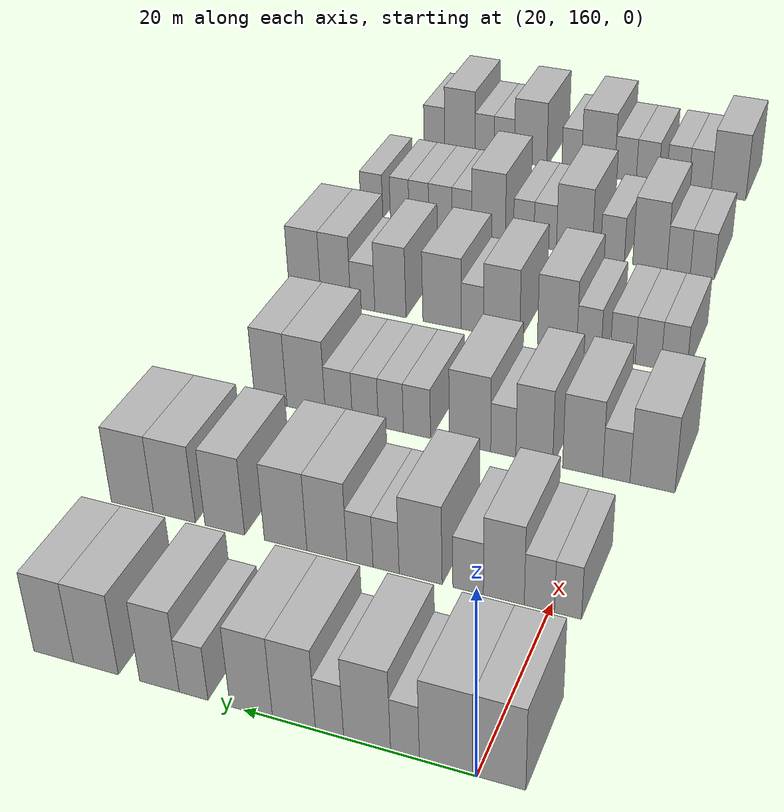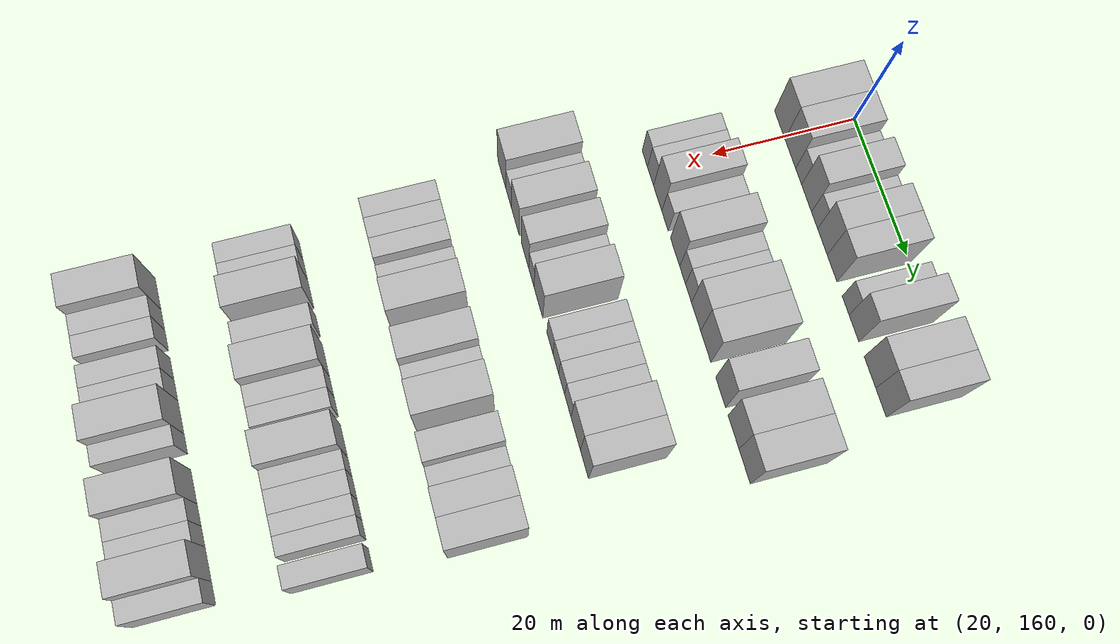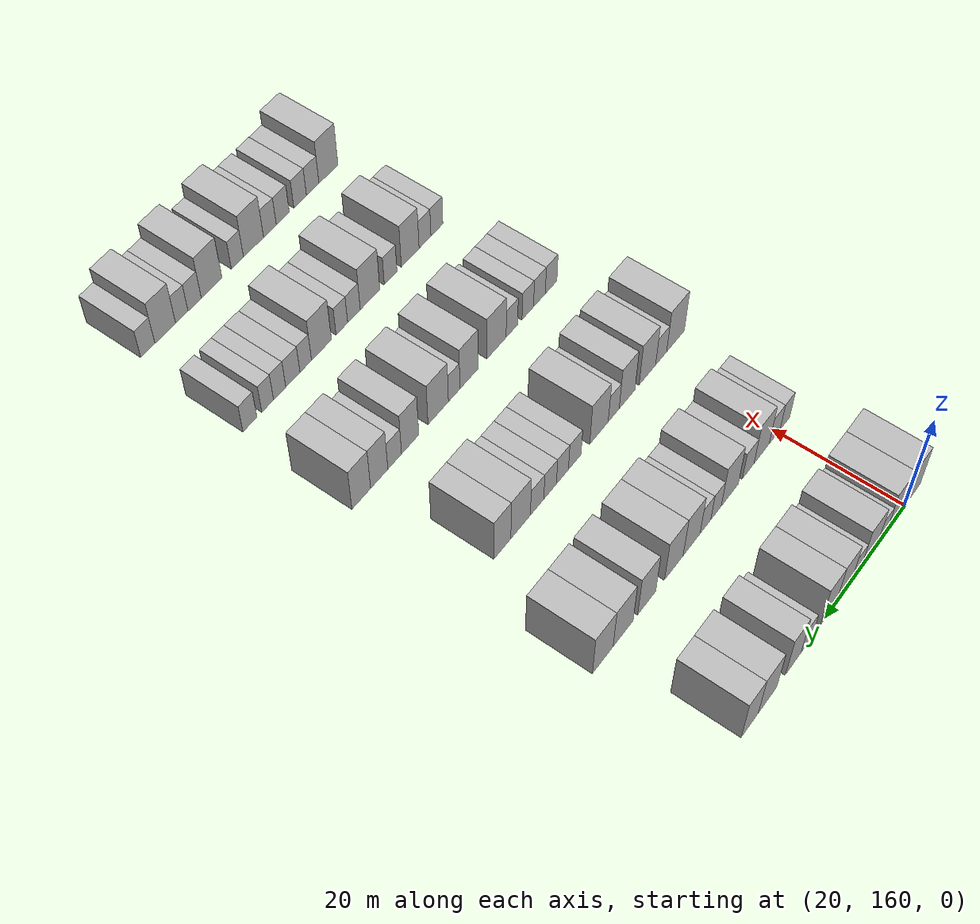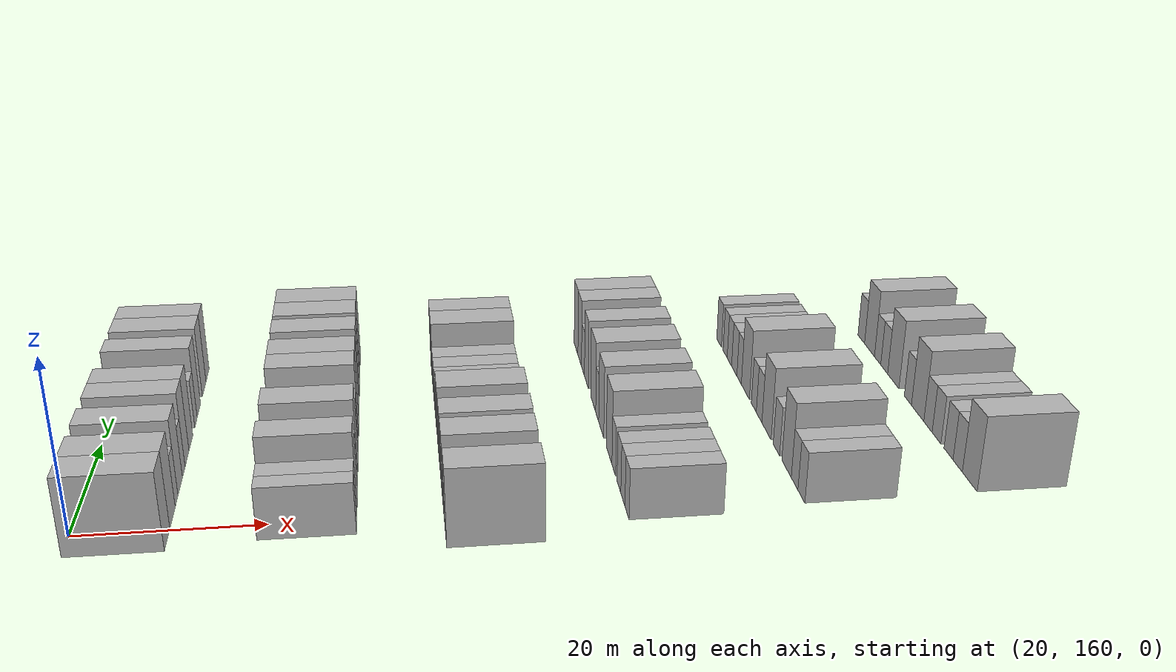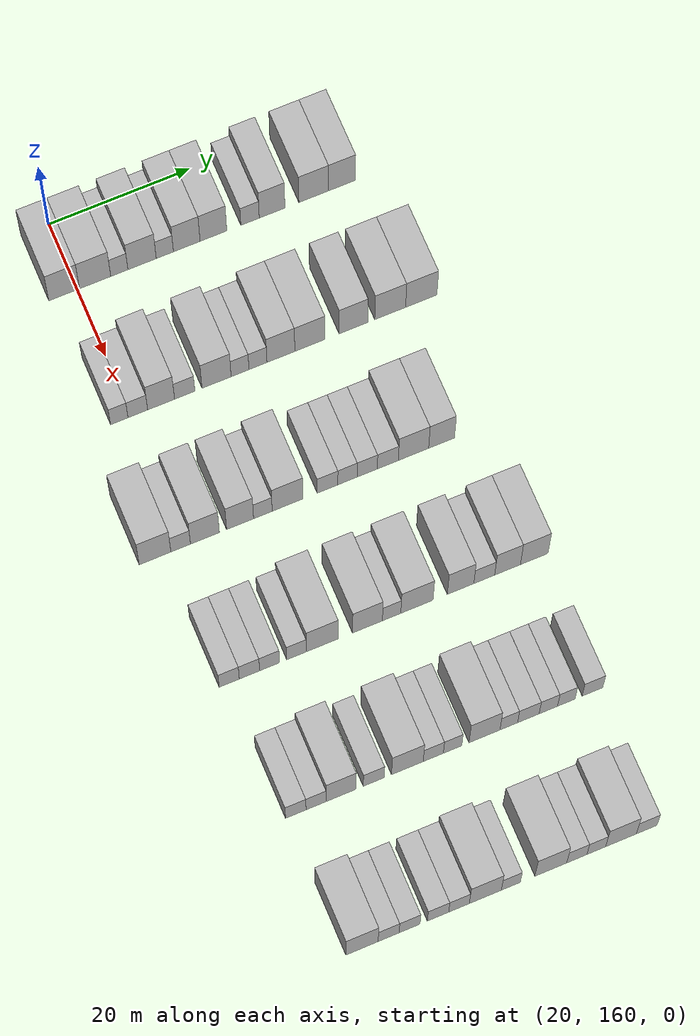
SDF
<sdf version="1.6">
 <world name="default">
  <model name="building_129">
   <static>1</static>
   <pose>25.0000 158.1504 0 0.000000 0.000000 0.000000</pose>
   <link name="link">
    <pose>0 0 4.50 0 0 0</pose>
    <collision name="collision"><geometry><box><size>10.0000 4.3362 9.0000</size></box></geometry></collision>
    <visual name="visual">
     <cast_shadows>0</cast_shadows>
     <geometry><box><size>10.0000 4.3362 9.0000</size></box></geometry>
     <material>
      <script>
       <uri>model://HANNAS_wall/materials/scripts</uri>
       <uri>model://HANNAS_wall/materials/textures</uri>
       <name>vrc/HANNAS_wall</name>
      </script>
     </material>
    </visual>
   </link>
  </model>
  <model name="building_130">
   <static>1</static>
   <pose>25.0000 162.5303 0 0.000000 0.000000 0.000000</pose>
   <link name="link">
    <pose>0 0 4.50 0 0 0</pose>
    <collision name="collision"><geometry><box><size>10.0000 4.4236 9.0000</size></box></geometry></collision>
    <visual name="visual">
     <cast_shadows>0</cast_shadows>
     <geometry><box><size>10.0000 4.4236 9.0000</size></box></geometry>
     <material>
      <script>
       <uri>model://HANNAS_wall/materials/scripts</uri>
       <uri>model://HANNAS_wall/materials/textures</uri>
       <name>vrc/HANNAS_wall</name>
      </script>
     </material>
    </visual>
   </link>
  </model>
  <model name="building_131">
   <static>1</static>
   <pose>25.0000 165.9577 0 0.000000 0.000000 0.000000</pose>
   <link name="link">
    <pose>0 0 3.00 0 0 0</pose>
    <collision name="collision"><geometry><box><size>10.0000 2.4312 6.0000</size></box></geometry></collision>
    <visual name="visual">
     <cast_shadows>0</cast_shadows>
     <geometry><box><size>10.0000 2.4312 6.0000</size></box></geometry>
     <material>
      <script>
       <uri>model://HANNAS_wall/materials/scripts</uri>
       <uri>model://HANNAS_wall/materials/textures</uri>
       <name>vrc/HANNAS_wall</name>
      </script>
     </material>
    </visual>
   </link>
  </model>
  <model name="building_132">
   <static>1</static>
   <pose>25.0000 169.1819 0 0.000000 0.000000 0.000000</pose>
   <link name="link">
    <pose>0 0 4.50 0 0 0</pose>
    <collision name="collision"><geometry><box><size>10.0000 4.0173 9.0000</size></box></geometry></collision>
    <visual name="visual">
     <cast_shadows>0</cast_shadows>
     <geometry><box><size>10.0000 4.0173 9.0000</size></box></geometry>
     <material>
      <script>
       <uri>model://HANNAS_wall/materials/scripts</uri>
       <uri>model://HANNAS_wall/materials/textures</uri>
       <name>vrc/HANNAS_wall</name>
      </script>
     </material>
    </visual>
   </link>
  </model>
  <model name="building_133">
   <static>1</static>
   <pose>25.0000 172.4122 0 0.000000 0.000000 0.000000</pose>
   <link name="link">
    <pose>0 0 3.00 0 0 0</pose>
    <collision name="collision"><geometry><box><size>10.0000 2.4432 6.0000</size></box></geometry></collision>
    <visual name="visual">
     <cast_shadows>0</cast_shadows>
     <geometry><box><size>10.0000 2.4432 6.0000</size></box></geometry>
     <material>
      <script>
       <uri>model://HANNAS_wall/materials/scripts</uri>
       <uri>model://HANNAS_wall/materials/textures</uri>
       <name>vrc/HANNAS_wall</name>
      </script>
     </material>
    </visual>
   </link>
  </model>
  <model name="building_134">
   <static>1</static>
   <pose>25.0000 175.5269 0 0.000000 0.000000 0.000000</pose>
   <link name="link">
    <pose>0 0 4.50 0 0 0</pose>
    <collision name="collision"><geometry><box><size>10.0000 3.7863 9.0000</size></box></geometry></collision>
    <visual name="visual">
     <cast_shadows>0</cast_shadows>
     <geometry><box><size>10.0000 3.7863 9.0000</size></box></geometry>
     <material>
      <script>
       <uri>model://HANNAS_wall/materials/scripts</uri>
       <uri>model://HANNAS_wall/materials/textures</uri>
       <name>vrc/HANNAS_wall</name>
      </script>
     </material>
    </visual>
   </link>
  </model>
  <model name="building_135">
   <static>1</static>
   <pose>25.0000 179.3238 0 0.000000 0.000000 0.000000</pose>
   <link name="link">
    <pose>0 0 4.50 0 0 0</pose>
    <collision name="collision"><geometry><box><size>10.0000 3.8074 9.0000</size></box></geometry></collision>
    <visual name="visual">
     <cast_shadows>0</cast_shadows>
     <geometry><box><size>10.0000 3.8074 9.0000</size></box></geometry>
     <material>
      <script>
       <uri>model://HANNAS_wall/materials/scripts</uri>
       <uri>model://HANNAS_wall/materials/textures</uri>
       <name>vrc/HANNAS_wall</name>
      </script>
     </material>
    </visual>
   </link>
  </model>
  <model name="building_136">
   <static>1</static>
   <pose>25.0000 184.5432 0 0.000000 0.000000 0.000000</pose>
   <link name="link">
    <pose>0 0 3.00 0 0 0</pose>
    <collision name="collision"><geometry><box><size>10.0000 2.6314 6.0000</size></box></geometry></collision>
    <visual name="visual">
     <cast_shadows>0</cast_shadows>
     <geometry><box><size>10.0000 2.6314 6.0000</size></box></geometry>
     <material>
      <script>
       <uri>model://HANNAS_wall/materials/scripts</uri>
       <uri>model://HANNAS_wall/materials/textures</uri>
       <name>vrc/HANNAS_wall</name>
      </script>
     </material>
    </visual>
   </link>
  </model>
  <model name="building_137">
   <static>1</static>
   <pose>25.0000 187.6938 0 0.000000 0.000000 0.000000</pose>
   <link name="link">
    <pose>0 0 4.50 0 0 0</pose>
    <collision name="collision"><geometry><box><size>10.0000 3.6699 9.0000</size></box></geometry></collision>
    <visual name="visual">
     <cast_shadows>0</cast_shadows>
     <geometry><box><size>10.0000 3.6699 9.0000</size></box></geometry>
     <material>
      <script>
       <uri>model://HANNAS_wall/materials/scripts</uri>
       <uri>model://HANNAS_wall/materials/textures</uri>
       <name>vrc/HANNAS_wall</name>
      </script>
     </material>
    </visual>
   </link>
  </model>
  <model name="building_138">
   <static>1</static>
   <pose>25.0000 193.6591 0 0.000000 0.000000 0.000000</pose>
   <link name="link">
    <pose>0 0 4.50 0 0 0</pose>
    <collision name="collision"><geometry><box><size>10.0000 4.2606 9.0000</size></box></geometry></collision>
    <visual name="visual">
     <cast_shadows>0</cast_shadows>
     <geometry><box><size>10.0000 4.2606 9.0000</size></box></geometry>
     <material>
      <script>
       <uri>model://HANNAS_wall/materials/scripts</uri>
       <uri>model://HANNAS_wall/materials/textures</uri>
       <name>vrc/HANNAS_wall</name>
      </script>
     </material>
    </visual>
   </link>
  </model>
  <model name="building_139">
   <static>1</static>
   <pose>25.0000 197.7045 0 0.000000 0.000000 0.000000</pose>
   <link name="link">
    <pose>0 0 4.50 0 0 0</pose>
    <collision name="collision"><geometry><box><size>10.0000 3.8302 9.0000</size></box></geometry></collision>
    <visual name="visual">
     <cast_shadows>0</cast_shadows>
     <geometry><box><size>10.0000 3.8302 9.0000</size></box></geometry>
     <material>
      <script>
       <uri>model://HANNAS_wall/materials/scripts</uri>
       <uri>model://HANNAS_wall/materials/textures</uri>
       <name>vrc/HANNAS_wall</name>
      </script>
     </material>
    </visual>
   </link>
  </model>
  <model name="building_295">
   <static>1</static>
   <pose>44.0000 158.2933 0 0.000000 0.000000 0.000000</pose>
   <link name="link">
    <pose>0 0 3.00 0 0 0</pose>
    <collision name="collision"><geometry><box><size>10.0000 2.4459 6.0000</size></box></geometry></collision>
    <visual name="visual">
     <cast_shadows>0</cast_shadows>
     <geometry><box><size>10.0000 2.4459 6.0000</size></box></geometry>
     <material>
      <script>
       <uri>model://HANNAS_wall/materials/scripts</uri>
       <uri>model://HANNAS_wall/materials/textures</uri>
       <name>vrc/HANNAS_wall</name>
      </script>
     </material>
    </visual>
   </link>
  </model>
  <model name="building_296">
   <static>1</static>
   <pose>44.0000 160.8919 0 0.000000 0.000000 0.000000</pose>
   <link name="link">
    <pose>0 0 3.00 0 0 0</pose>
    <collision name="collision"><geometry><box><size>10.0000 2.7513 6.0000</size></box></geometry></collision>
    <visual name="visual">
     <cast_shadows>0</cast_shadows>
     <geometry><box><size>10.0000 2.7513 6.0000</size></box></geometry>
     <material>
      <script>
       <uri>model://HANNAS_wall/materials/scripts</uri>
       <uri>model://HANNAS_wall/materials/textures</uri>
       <name>vrc/HANNAS_wall</name>
      </script>
     </material>
    </visual>
   </link>
  </model>
  <model name="building_297">
   <static>1</static>
   <pose>44.0000 164.1567 0 0.000000 0.000000 0.000000</pose>
   <link name="link">
    <pose>0 0 4.50 0 0 0</pose>
    <collision name="collision"><geometry><box><size>10.0000 3.7783 9.0000</size></box></geometry></collision>
    <visual name="visual">
     <cast_shadows>0</cast_shadows>
     <geometry><box><size>10.0000 3.7783 9.0000</size></box></geometry>
     <material>
      <script>
       <uri>model://HANNAS_wall/materials/scripts</uri>
       <uri>model://HANNAS_wall/materials/textures</uri>
       <name>vrc/HANNAS_wall</name>
      </script>
     </material>
    </visual>
   </link>
  </model>
  <model name="building_298">
   <static>1</static>
   <pose>44.0000 167.4748 0 0.000000 0.000000 0.000000</pose>
   <link name="link">
    <pose>0 0 3.00 0 0 0</pose>
    <collision name="collision"><geometry><box><size>10.0000 2.8578 6.0000</size></box></geometry></collision>
    <visual name="visual">
     <cast_shadows>0</cast_shadows>
     <geometry><box><size>10.0000 2.8578 6.0000</size></box></geometry>
     <material>
      <script>
       <uri>model://HANNAS_wall/materials/scripts</uri>
       <uri>model://HANNAS_wall/materials/textures</uri>
       <name>vrc/HANNAS_wall</name>
      </script>
     </material>
    </visual>
   </link>
  </model>
  <model name="building_299">
   <static>1</static>
   <pose>44.0000 171.9542 0 0.000000 0.000000 0.000000</pose>
   <link name="link">
    <pose>0 0 4.50 0 0 0</pose>
    <collision name="collision"><geometry><box><size>10.0000 4.1010 9.0000</size></box></geometry></collision>
    <visual name="visual">
     <cast_shadows>0</cast_shadows>
     <geometry><box><size>10.0000 4.1010 9.0000</size></box></geometry>
     <material>
      <script>
       <uri>model://HANNAS_wall/materials/scripts</uri>
       <uri>model://HANNAS_wall/materials/textures</uri>
       <name>vrc/HANNAS_wall</name>
      </script>
     </material>
    </visual>
   </link>
  </model>
  <model name="building_300">
   <static>1</static>
   <pose>44.0000 175.2637 0 0.000000 0.000000 0.000000</pose>
   <link name="link">
    <pose>0 0 3.00 0 0 0</pose>
    <collision name="collision"><geometry><box><size>10.0000 2.5179 6.0000</size></box></geometry></collision>
    <visual name="visual">
     <cast_shadows>0</cast_shadows>
     <geometry><box><size>10.0000 2.5179 6.0000</size></box></geometry>
     <material>
      <script>
       <uri>model://HANNAS_wall/materials/scripts</uri>
       <uri>model://HANNAS_wall/materials/textures</uri>
       <name>vrc/HANNAS_wall</name>
      </script>
     </material>
    </visual>
   </link>
  </model>
  <model name="building_301">
   <static>1</static>
   <pose>44.0000 177.7929 0 0.000000 0.000000 0.000000</pose>
   <link name="link">
    <pose>0 0 3.00 0 0 0</pose>
    <collision name="collision"><geometry><box><size>10.0000 2.5406 6.0000</size></box></geometry></collision>
    <visual name="visual">
     <cast_shadows>0</cast_shadows>
     <geometry><box><size>10.0000 2.5406 6.0000</size></box></geometry>
     <material>
      <script>
       <uri>model://HANNAS_wall/materials/scripts</uri>
       <uri>model://HANNAS_wall/materials/textures</uri>
       <name>vrc/HANNAS_wall</name>
      </script>
     </material>
    </visual>
   </link>
  </model>
  <model name="building_302">
   <static>1</static>
   <pose>44.0000 181.0361 0 0.000000 0.000000 0.000000</pose>
   <link name="link">
    <pose>0 0 4.50 0 0 0</pose>
    <collision name="collision"><geometry><box><size>10.0000 3.9457 9.0000</size></box></geometry></collision>
    <visual name="visual">
     <cast_shadows>0</cast_shadows>
     <geometry><box><size>10.0000 3.9457 9.0000</size></box></geometry>
     <material>
      <script>
       <uri>model://HANNAS_wall/materials/scripts</uri>
       <uri>model://HANNAS_wall/materials/textures</uri>
       <name>vrc/HANNAS_wall</name>
      </script>
     </material>
    </visual>
   </link>
  </model>
  <model name="building_303">
   <static>1</static>
   <pose>44.0000 185.1451 0 0.000000 0.000000 0.000000</pose>
   <link name="link">
    <pose>0 0 4.50 0 0 0</pose>
    <collision name="collision"><geometry><box><size>10.0000 4.2724 9.0000</size></box></geometry></collision>
    <visual name="visual">
     <cast_shadows>0</cast_shadows>
     <geometry><box><size>10.0000 4.2724 9.0000</size></box></geometry>
     <material>
      <script>
       <uri>model://HANNAS_wall/materials/scripts</uri>
       <uri>model://HANNAS_wall/materials/textures</uri>
       <name>vrc/HANNAS_wall</name>
      </script>
     </material>
    </visual>
   </link>
  </model>
  <model name="building_304">
   <static>1</static>
   <pose>44.0000 191.3143 0 0.000000 0.000000 0.000000</pose>
   <link name="link">
    <pose>0 0 4.50 0 0 0</pose>
    <collision name="collision"><geometry><box><size>10.0000 4.0660 9.0000</size></box></geometry></collision>
    <visual name="visual">
     <cast_shadows>0</cast_shadows>
     <geometry><box><size>10.0000 4.0660 9.0000</size></box></geometry>
     <material>
      <script>
       <uri>model://HANNAS_wall/materials/scripts</uri>
       <uri>model://HANNAS_wall/materials/textures</uri>
       <name>vrc/HANNAS_wall</name>
      </script>
     </material>
    </visual>
   </link>
  </model>
  <model name="building_305">
   <static>1</static>
   <pose>44.0000 196.5431 0 0.000000 0.000000 0.000000</pose>
   <link name="link">
    <pose>0 0 4.50 0 0 0</pose>
    <collision name="collision"><geometry><box><size>10.0000 4.3914 9.0000</size></box></geometry></collision>
    <visual name="visual">
     <cast_shadows>0</cast_shadows>
     <geometry><box><size>10.0000 4.3914 9.0000</size></box></geometry>
     <material>
      <script>
       <uri>model://HANNAS_wall/materials/scripts</uri>
       <uri>model://HANNAS_wall/materials/textures</uri>
       <name>vrc/HANNAS_wall</name>
      </script>
     </material>
    </visual>
   </link>
  </model>
  <model name="building_306">
   <static>1</static>
   <pose>44.0000 200.9729 0 0.000000 0.000000 0.000000</pose>
   <link name="link">
    <pose>0 0 4.50 0 0 0</pose>
    <collision name="collision"><geometry><box><size>10.0000 4.4682 9.0000</size></box></geometry></collision>
    <visual name="visual">
     <cast_shadows>0</cast_shadows>
     <geometry><box><size>10.0000 4.4682 9.0000</size></box></geometry>
     <material>
      <script>
       <uri>model://HANNAS_wall/materials/scripts</uri>
       <uri>model://HANNAS_wall/materials/textures</uri>
       <name>vrc/HANNAS_wall</name>
      </script>
     </material>
    </visual>
   </link>
  </model>
  <model name="building_475">
   <static>1</static>
   <pose>63.0000 155.5913 0 0.000000 0.000000 0.000000</pose>
   <link name="link">
    <pose>0 0 4.50 0 0 0</pose>
    <collision name="collision"><geometry><box><size>10.0000 4.4008 9.0000</size></box></geometry></collision>
    <visual name="visual">
     <cast_shadows>0</cast_shadows>
     <geometry><box><size>10.0000 4.4008 9.0000</size></box></geometry>
     <material>
      <script>
       <uri>model://HANNAS_wall/materials/scripts</uri>
       <uri>model://HANNAS_wall/materials/textures</uri>
       <name>vrc/HANNAS_wall</name>
      </script>
     </material>
    </visual>
   </link>
  </model>
  <model name="building_476">
   <static>1</static>
   <pose>63.0000 159.1516 0 0.000000 0.000000 0.000000</pose>
   <link name="link">
    <pose>0 0 3.00 0 0 0</pose>
    <collision name="collision"><geometry><box><size>10.0000 2.7197 6.0000</size></box></geometry></collision>
    <visual name="visual">
     <cast_shadows>0</cast_shadows>
     <geometry><box><size>10.0000 2.7197 6.0000</size></box></geometry>
     <material>
      <script>
       <uri>model://HANNAS_wall/materials/scripts</uri>
       <uri>model://HANNAS_wall/materials/textures</uri>
       <name>vrc/HANNAS_wall</name>
      </script>
     </material>
    </visual>
   </link>
  </model>
  <model name="building_477">
   <static>1</static>
   <pose>63.0000 162.5235 0 0.000000 0.000000 0.000000</pose>
   <link name="link">
    <pose>0 0 4.50 0 0 0</pose>
    <collision name="collision"><geometry><box><size>10.0000 4.0241 9.0000</size></box></geometry></collision>
    <visual name="visual">
     <cast_shadows>0</cast_shadows>
     <geometry><box><size>10.0000 4.0241 9.0000</size></box></geometry>
     <material>
      <script>
       <uri>model://HANNAS_wall/materials/scripts</uri>
       <uri>model://HANNAS_wall/materials/textures</uri>
       <name>vrc/HANNAS_wall</name>
      </script>
     </material>
    </visual>
   </link>
  </model>
  <model name="building_478">
   <static>1</static>
   <pose>63.0000 167.4184 0 0.000000 0.000000 0.000000</pose>
   <link name="link">
    <pose>0 0 4.50 0 0 0</pose>
    <collision name="collision"><geometry><box><size>10.0000 3.7657 9.0000</size></box></geometry></collision>
    <visual name="visual">
     <cast_shadows>0</cast_shadows>
     <geometry><box><size>10.0000 3.7657 9.0000</size></box></geometry>
     <material>
      <script>
       <uri>model://HANNAS_wall/materials/scripts</uri>
       <uri>model://HANNAS_wall/materials/textures</uri>
       <name>vrc/HANNAS_wall</name>
      </script>
     </material>
    </visual>
   </link>
  </model>
  <model name="building_479">
   <static>1</static>
   <pose>63.0000 170.5989 0 0.000000 0.000000 0.000000</pose>
   <link name="link">
    <pose>0 0 3.00 0 0 0</pose>
    <collision name="collision"><geometry><box><size>10.0000 2.5954 6.0000</size></box></geometry></collision>
    <visual name="visual">
     <cast_shadows>0</cast_shadows>
     <geometry><box><size>10.0000 2.5954 6.0000</size></box></geometry>
     <material>
      <script>
       <uri>model://HANNAS_wall/materials/scripts</uri>
       <uri>model://HANNAS_wall/materials/textures</uri>
       <name>vrc/HANNAS_wall</name>
      </script>
     </material>
    </visual>
   </link>
  </model>
  <model name="building_480">
   <static>1</static>
   <pose>63.0000 174.0496 0 0.000000 0.000000 0.000000</pose>
   <link name="link">
    <pose>0 0 4.50 0 0 0</pose>
    <collision name="collision"><geometry><box><size>10.0000 4.3059 9.0000</size></box></geometry></collision>
    <visual name="visual">
     <cast_shadows>0</cast_shadows>
     <geometry><box><size>10.0000 4.3059 9.0000</size></box></geometry>
     <material>
      <script>
       <uri>model://HANNAS_wall/materials/scripts</uri>
       <uri>model://HANNAS_wall/materials/textures</uri>
       <name>vrc/HANNAS_wall</name>
      </script>
     </material>
    </visual>
   </link>
  </model>
  <model name="building_481">
   <static>1</static>
   <pose>63.0000 179.6461 0 0.000000 0.000000 0.000000</pose>
   <link name="link">
    <pose>0 0 3.00 0 0 0</pose>
    <collision name="collision"><geometry><box><size>10.0000 2.8872 6.0000</size></box></geometry></collision>
    <visual name="visual">
     <cast_shadows>0</cast_shadows>
     <geometry><box><size>10.0000 2.8872 6.0000</size></box></geometry>
     <material>
      <script>
       <uri>model://HANNAS_wall/materials/scripts</uri>
       <uri>model://HANNAS_wall/materials/textures</uri>
       <name>vrc/HANNAS_wall</name>
      </script>
     </material>
    </visual>
   </link>
  </model>
  <model name="building_482">
   <static>1</static>
   <pose>63.0000 182.4427 0 0.000000 0.000000 0.000000</pose>
   <link name="link">
    <pose>0 0 3.00 0 0 0</pose>
    <collision name="collision"><geometry><box><size>10.0000 2.7059 6.0000</size></box></geometry></collision>
    <visual name="visual">
     <cast_shadows>0</cast_shadows>
     <geometry><box><size>10.0000 2.7059 6.0000</size></box></geometry>
     <material>
      <script>
       <uri>model://HANNAS_wall/materials/scripts</uri>
       <uri>model://HANNAS_wall/materials/textures</uri>
       <name>vrc/HANNAS_wall</name>
      </script>
     </material>
    </visual>
   </link>
  </model>
  <model name="building_483">
   <static>1</static>
   <pose>63.0000 185.2103 0 0.000000 0.000000 0.000000</pose>
   <link name="link">
    <pose>0 0 3.00 0 0 0</pose>
    <collision name="collision"><geometry><box><size>10.0000 2.8293 6.0000</size></box></geometry></collision>
    <visual name="visual">
     <cast_shadows>0</cast_shadows>
     <geometry><box><size>10.0000 2.8293 6.0000</size></box></geometry>
     <material>
      <script>
       <uri>model://HANNAS_wall/materials/scripts</uri>
       <uri>model://HANNAS_wall/materials/textures</uri>
       <name>vrc/HANNAS_wall</name>
      </script>
     </material>
    </visual>
   </link>
  </model>
  <model name="building_484">
   <static>1</static>
   <pose>63.0000 188.1064 0 0.000000 0.000000 0.000000</pose>
   <link name="link">
    <pose>0 0 3.00 0 0 0</pose>
    <collision name="collision"><geometry><box><size>10.0000 2.9630 6.0000</size></box></geometry></collision>
    <visual name="visual">
     <cast_shadows>0</cast_shadows>
     <geometry><box><size>10.0000 2.9630 6.0000</size></box></geometry>
     <material>
      <script>
       <uri>model://HANNAS_wall/materials/scripts</uri>
       <uri>model://HANNAS_wall/materials/textures</uri>
       <name>vrc/HANNAS_wall</name>
      </script>
     </material>
    </visual>
   </link>
  </model>
  <model name="building_485">
   <static>1</static>
   <pose>63.0000 191.7236 0 0.000000 0.000000 0.000000</pose>
   <link name="link">
    <pose>0 0 4.50 0 0 0</pose>
    <collision name="collision"><geometry><box><size>10.0000 4.2714 9.0000</size></box></geometry></collision>
    <visual name="visual">
     <cast_shadows>0</cast_shadows>
     <geometry><box><size>10.0000 4.2714 9.0000</size></box></geometry>
     <material>
      <script>
       <uri>model://HANNAS_wall/materials/scripts</uri>
       <uri>model://HANNAS_wall/materials/textures</uri>
       <name>vrc/HANNAS_wall</name>
      </script>
     </material>
    </visual>
   </link>
  </model>
  <model name="building_486">
   <static>1</static>
   <pose>63.0000 195.6808 0 0.000000 0.000000 0.000000</pose>
   <link name="link">
    <pose>0 0 4.50 0 0 0</pose>
    <collision name="collision"><geometry><box><size>10.0000 3.6430 9.0000</size></box></geometry></collision>
    <visual name="visual">
     <cast_shadows>0</cast_shadows>
     <geometry><box><size>10.0000 3.6430 9.0000</size></box></geometry>
     <material>
      <script>
       <uri>model://HANNAS_wall/materials/scripts</uri>
       <uri>model://HANNAS_wall/materials/textures</uri>
       <name>vrc/HANNAS_wall</name>
      </script>
     </material>
    </visual>
   </link>
  </model>
  <model name="building_622">
   <static>1</static>
   <pose>82.0000 158.0698 0 0.000000 0.000000 0.000000</pose>
   <link name="link">
    <pose>0 0 3.00 0 0 0</pose>
    <collision name="collision"><geometry><box><size>10.0000 2.7688 6.0000</size></box></geometry></collision>
    <visual name="visual">
     <cast_shadows>0</cast_shadows>
     <geometry><box><size>10.0000 2.7688 6.0000</size></box></geometry>
     <material>
      <script>
       <uri>model://HANNAS_wall/materials/scripts</uri>
       <uri>model://HANNAS_wall/materials/textures</uri>
       <name>vrc/HANNAS_wall</name>
      </script>
     </material>
    </visual>
   </link>
  </model>
  <model name="building_623">
   <static>1</static>
   <pose>82.0000 160.8562 0 0.000000 0.000000 0.000000</pose>
   <link name="link">
    <pose>0 0 3.00 0 0 0</pose>
    <collision name="collision"><geometry><box><size>10.0000 2.8041 6.0000</size></box></geometry></collision>
    <visual name="visual">
     <cast_shadows>0</cast_shadows>
     <geometry><box><size>10.0000 2.8041 6.0000</size></box></geometry>
     <material>
      <script>
       <uri>model://HANNAS_wall/materials/scripts</uri>
       <uri>model://HANNAS_wall/materials/textures</uri>
       <name>vrc/HANNAS_wall</name>
      </script>
     </material>
    </visual>
   </link>
  </model>
  <model name="building_624">
   <static>1</static>
   <pose>82.0000 163.6305 0 0.000000 0.000000 0.000000</pose>
   <link name="link">
    <pose>0 0 3.00 0 0 0</pose>
    <collision name="collision"><geometry><box><size>10.0000 2.7444 6.0000</size></box></geometry></collision>
    <visual name="visual">
     <cast_shadows>0</cast_shadows>
     <geometry><box><size>10.0000 2.7444 6.0000</size></box></geometry>
     <material>
      <script>
       <uri>model://HANNAS_wall/materials/scripts</uri>
       <uri>model://HANNAS_wall/materials/textures</uri>
       <name>vrc/HANNAS_wall</name>
      </script>
     </material>
    </visual>
   </link>
  </model>
  <model name="building_625">
   <static>1</static>
   <pose>82.0000 167.3593 0 0.000000 0.000000 0.000000</pose>
   <link name="link">
    <pose>0 0 3.00 0 0 0</pose>
    <collision name="collision"><geometry><box><size>10.0000 2.7132 6.0000</size></box></geometry></collision>
    <visual name="visual">
     <cast_shadows>0</cast_shadows>
     <geometry><box><size>10.0000 2.7132 6.0000</size></box></geometry>
     <material>
      <script>
       <uri>model://HANNAS_wall/materials/scripts</uri>
       <uri>model://HANNAS_wall/materials/textures</uri>
       <name>vrc/HANNAS_wall</name>
      </script>
     </material>
    </visual>
   </link>
  </model>
  <model name="building_626">
   <static>1</static>
   <pose>82.0000 170.9119 0 0.000000 0.000000 0.000000</pose>
   <link name="link">
    <pose>0 0 4.50 0 0 0</pose>
    <collision name="collision"><geometry><box><size>10.0000 4.3918 9.0000</size></box></geometry></collision>
    <visual name="visual">
     <cast_shadows>0</cast_shadows>
     <geometry><box><size>10.0000 4.3918 9.0000</size></box></geometry>
     <material>
      <script>
       <uri>model://HANNAS_wall/materials/scripts</uri>
       <uri>model://HANNAS_wall/materials/textures</uri>
       <name>vrc/HANNAS_wall</name>
      </script>
     </material>
    </visual>
   </link>
  </model>
  <model name="building_627">
   <static>1</static>
   <pose>82.0000 177.1822 0 0.000000 0.000000 0.000000</pose>
   <link name="link">
    <pose>0 0 4.50 0 0 0</pose>
    <collision name="collision"><geometry><box><size>10.0000 4.1489 9.0000</size></box></geometry></collision>
    <visual name="visual">
     <cast_shadows>0</cast_shadows>
     <geometry><box><size>10.0000 4.1489 9.0000</size></box></geometry>
     <material>
      <script>
       <uri>model://HANNAS_wall/materials/scripts</uri>
       <uri>model://HANNAS_wall/materials/textures</uri>
       <name>vrc/HANNAS_wall</name>
      </script>
     </material>
    </visual>
   </link>
  </model>
  <model name="building_628">
   <static>1</static>
   <pose>82.0000 180.5364 0 0.000000 0.000000 0.000000</pose>
   <link name="link">
    <pose>0 0 3.00 0 0 0</pose>
    <collision name="collision"><geometry><box><size>10.0000 2.5595 6.0000</size></box></geometry></collision>
    <visual name="visual">
     <cast_shadows>0</cast_shadows>
     <geometry><box><size>10.0000 2.5595 6.0000</size></box></geometry>
     <material>
      <script>
       <uri>model://HANNAS_wall/materials/scripts</uri>
       <uri>model://HANNAS_wall/materials/textures</uri>
       <name>vrc/HANNAS_wall</name>
      </script>
     </material>
    </visual>
   </link>
  </model>
  <model name="building_629">
   <static>1</static>
   <pose>82.0000 184.0594 0 0.000000 0.000000 0.000000</pose>
   <link name="link">
    <pose>0 0 4.50 0 0 0</pose>
    <collision name="collision"><geometry><box><size>10.0000 4.4866 9.0000</size></box></geometry></collision>
    <visual name="visual">
     <cast_shadows>0</cast_shadows>
     <geometry><box><size>10.0000 4.4866 9.0000</size></box></geometry>
     <material>
      <script>
       <uri>model://HANNAS_wall/materials/scripts</uri>
       <uri>model://HANNAS_wall/materials/textures</uri>
       <name>vrc/HANNAS_wall</name>
      </script>
     </material>
    </visual>
   </link>
  </model>
  <model name="building_630">
   <static>1</static>
   <pose>82.0000 190.1579 0 0.000000 0.000000 0.000000</pose>
   <link name="link">
    <pose>0 0 4.50 0 0 0</pose>
    <collision name="collision"><geometry><box><size>10.0000 3.7102 9.0000</size></box></geometry></collision>
    <visual name="visual">
     <cast_shadows>0</cast_shadows>
     <geometry><box><size>10.0000 3.7102 9.0000</size></box></geometry>
     <material>
      <script>
       <uri>model://HANNAS_wall/materials/scripts</uri>
       <uri>model://HANNAS_wall/materials/textures</uri>
       <name>vrc/HANNAS_wall</name>
      </script>
     </material>
    </visual>
   </link>
  </model>
  <model name="building_631">
   <static>1</static>
   <pose>82.0000 193.4663 0 0.000000 0.000000 0.000000</pose>
   <link name="link">
    <pose>0 0 3.00 0 0 0</pose>
    <collision name="collision"><geometry><box><size>10.0000 2.9067 6.0000</size></box></geometry></collision>
    <visual name="visual">
     <cast_shadows>0</cast_shadows>
     <geometry><box><size>10.0000 2.9067 6.0000</size></box></geometry>
     <material>
      <script>
       <uri>model://HANNAS_wall/materials/scripts</uri>
       <uri>model://HANNAS_wall/materials/textures</uri>
       <name>vrc/HANNAS_wall</name>
      </script>
     </material>
    </visual>
   </link>
  </model>
  <model name="building_632">
   <static>1</static>
   <pose>82.0000 196.7243 0 0.000000 0.000000 0.000000</pose>
   <link name="link">
    <pose>0 0 4.50 0 0 0</pose>
    <collision name="collision"><geometry><box><size>10.0000 3.6092 9.0000</size></box></geometry></collision>
    <visual name="visual">
     <cast_shadows>0</cast_shadows>
     <geometry><box><size>10.0000 3.6092 9.0000</size></box></geometry>
     <material>
      <script>
       <uri>model://HANNAS_wall/materials/scripts</uri>
       <uri>model://HANNAS_wall/materials/textures</uri>
       <name>vrc/HANNAS_wall</name>
      </script>
     </material>
    </visual>
   </link>
  </model>
  <model name="building_633">
   <static>1</static>
   <pose>82.0000 200.4668 0 0.000000 0.000000 0.000000</pose>
   <link name="link">
    <pose>0 0 4.50 0 0 0</pose>
    <collision name="collision"><geometry><box><size>10.0000 3.8759 9.0000</size></box></geometry></collision>
    <visual name="visual">
     <cast_shadows>0</cast_shadows>
     <geometry><box><size>10.0000 3.8759 9.0000</size></box></geometry>
     <material>
      <script>
       <uri>model://HANNAS_wall/materials/scripts</uri>
       <uri>model://HANNAS_wall/materials/textures</uri>
       <name>vrc/HANNAS_wall</name>
      </script>
     </material>
    </visual>
   </link>
  </model>
  <model name="building_793">
   <static>1</static>
   <pose>101.0000 159.3074 0 0.000000 0.000000 0.000000</pose>
   <link name="link">
    <pose>0 0 3.00 0 0 0</pose>
    <collision name="collision"><geometry><box><size>10.0000 2.8023 6.0000</size></box></geometry></collision>
    <visual name="visual">
     <cast_shadows>0</cast_shadows>
     <geometry><box><size>10.0000 2.8023 6.0000</size></box></geometry>
     <material>
      <script>
       <uri>model://HANNAS_wall/materials/scripts</uri>
       <uri>model://HANNAS_wall/materials/textures</uri>
       <name>vrc/HANNAS_wall</name>
      </script>
     </material>
    </visual>
   </link>
  </model>
  <model name="building_794">
   <static>1</static>
   <pose>101.0000 162.0856 0 0.000000 0.000000 0.000000</pose>
   <link name="link">
    <pose>0 0 3.00 0 0 0</pose>
    <collision name="collision"><geometry><box><size>10.0000 2.7541 6.0000</size></box></geometry></collision>
    <visual name="visual">
     <cast_shadows>0</cast_shadows>
     <geometry><box><size>10.0000 2.7541 6.0000</size></box></geometry>
     <material>
      <script>
       <uri>model://HANNAS_wall/materials/scripts</uri>
       <uri>model://HANNAS_wall/materials/textures</uri>
       <name>vrc/HANNAS_wall</name>
      </script>
     </material>
    </visual>
   </link>
  </model>
  <model name="building_795">
   <static>1</static>
   <pose>101.0000 165.5037 0 0.000000 0.000000 0.000000</pose>
   <link name="link">
    <pose>0 0 4.50 0 0 0</pose>
    <collision name="collision"><geometry><box><size>10.0000 4.0822 9.0000</size></box></geometry></collision>
    <visual name="visual">
     <cast_shadows>0</cast_shadows>
     <geometry><box><size>10.0000 4.0822 9.0000</size></box></geometry>
     <material>
      <script>
       <uri>model://HANNAS_wall/materials/scripts</uri>
       <uri>model://HANNAS_wall/materials/textures</uri>
       <name>vrc/HANNAS_wall</name>
      </script>
     </material>
    </visual>
   </link>
  </model>
  <model name="building_796">
   <static>1</static>
   <pose>101.0000 169.9842 0 0.000000 0.000000 0.000000</pose>
   <link name="link">
    <pose>0 0 3.00 0 0 0</pose>
    <collision name="collision"><geometry><box><size>10.0000 2.8787 6.0000</size></box></geometry></collision>
    <visual name="visual">
     <cast_shadows>0</cast_shadows>
     <geometry><box><size>10.0000 2.8787 6.0000</size></box></geometry>
     <material>
      <script>
       <uri>model://HANNAS_wall/materials/scripts</uri>
       <uri>model://HANNAS_wall/materials/textures</uri>
       <name>vrc/HANNAS_wall</name>
      </script>
     </material>
    </visual>
   </link>
  </model>
  <model name="building_797">
   <static>1</static>
   <pose>101.0000 174.6067 0 0.000000 0.000000 0.000000</pose>
   <link name="link">
    <pose>0 0 4.50 0 0 0</pose>
    <collision name="collision"><geometry><box><size>10.0000 4.3664 9.0000</size></box></geometry></collision>
    <visual name="visual">
     <cast_shadows>0</cast_shadows>
     <geometry><box><size>10.0000 4.3664 9.0000</size></box></geometry>
     <material>
      <script>
       <uri>model://HANNAS_wall/materials/scripts</uri>
       <uri>model://HANNAS_wall/materials/textures</uri>
       <name>vrc/HANNAS_wall</name>
      </script>
     </material>
    </visual>
   </link>
  </model>
  <model name="building_798">
   <static>1</static>
   <pose>101.0000 178.1774 0 0.000000 0.000000 0.000000</pose>
   <link name="link">
    <pose>0 0 3.00 0 0 0</pose>
    <collision name="collision"><geometry><box><size>10.0000 2.7751 6.0000</size></box></geometry></collision>
    <visual name="visual">
     <cast_shadows>0</cast_shadows>
     <geometry><box><size>10.0000 2.7751 6.0000</size></box></geometry>
     <material>
      <script>
       <uri>model://HANNAS_wall/materials/scripts</uri>
       <uri>model://HANNAS_wall/materials/textures</uri>
       <name>vrc/HANNAS_wall</name>
      </script>
     </material>
    </visual>
   </link>
  </model>
  <model name="building_799">
   <static>1</static>
   <pose>101.0000 180.8342 0 0.000000 0.000000 0.000000</pose>
   <link name="link">
    <pose>0 0 3.00 0 0 0</pose>
    <collision name="collision"><geometry><box><size>10.0000 2.5384 6.0000</size></box></geometry></collision>
    <visual name="visual">
     <cast_shadows>0</cast_shadows>
     <geometry><box><size>10.0000 2.5384 6.0000</size></box></geometry>
     <material>
      <script>
       <uri>model://HANNAS_wall/materials/scripts</uri>
       <uri>model://HANNAS_wall/materials/textures</uri>
       <name>vrc/HANNAS_wall</name>
      </script>
     </material>
    </visual>
   </link>
  </model>
  <model name="building_800">
   <static>1</static>
   <pose>101.0000 185.2396 0 0.000000 0.000000 0.000000</pose>
   <link name="link">
    <pose>0 0 4.50 0 0 0</pose>
    <collision name="collision"><geometry><box><size>10.0000 4.2725 9.0000</size></box></geometry></collision>
    <visual name="visual">
     <cast_shadows>0</cast_shadows>
     <geometry><box><size>10.0000 4.2725 9.0000</size></box></geometry>
     <material>
      <script>
       <uri>model://HANNAS_wall/materials/scripts</uri>
       <uri>model://HANNAS_wall/materials/textures</uri>
       <name>vrc/HANNAS_wall</name>
      </script>
     </material>
    </visual>
   </link>
  </model>
  <model name="building_801">
   <static>1</static>
   <pose>101.0000 188.6029 0 0.000000 0.000000 0.000000</pose>
   <link name="link">
    <pose>0 0 3.00 0 0 0</pose>
    <collision name="collision"><geometry><box><size>10.0000 2.4540 6.0000</size></box></geometry></collision>
    <visual name="visual">
     <cast_shadows>0</cast_shadows>
     <geometry><box><size>10.0000 2.4540 6.0000</size></box></geometry>
     <material>
      <script>
       <uri>model://HANNAS_wall/materials/scripts</uri>
       <uri>model://HANNAS_wall/materials/textures</uri>
       <name>vrc/HANNAS_wall</name>
      </script>
     </material>
    </visual>
   </link>
  </model>
  <model name="building_802">
   <static>1</static>
   <pose>101.0000 191.3240 0 0.000000 0.000000 0.000000</pose>
   <link name="link">
    <pose>0 0 3.00 0 0 0</pose>
    <collision name="collision"><geometry><box><size>10.0000 2.9884 6.0000</size></box></geometry></collision>
    <visual name="visual">
     <cast_shadows>0</cast_shadows>
     <geometry><box><size>10.0000 2.9884 6.0000</size></box></geometry>
     <material>
      <script>
       <uri>model://HANNAS_wall/materials/scripts</uri>
       <uri>model://HANNAS_wall/materials/textures</uri>
       <name>vrc/HANNAS_wall</name>
      </script>
     </material>
    </visual>
   </link>
  </model>
  <model name="building_803">
   <static>1</static>
   <pose>101.0000 194.0958 0 0.000000 0.000000 0.000000</pose>
   <link name="link">
    <pose>0 0 3.00 0 0 0</pose>
    <collision name="collision"><geometry><box><size>10.0000 2.5551 6.0000</size></box></geometry></collision>
    <visual name="visual">
     <cast_shadows>0</cast_shadows>
     <geometry><box><size>10.0000 2.5551 6.0000</size></box></geometry>
     <material>
      <script>
       <uri>model://HANNAS_wall/materials/scripts</uri>
       <uri>model://HANNAS_wall/materials/textures</uri>
       <name>vrc/HANNAS_wall</name>
      </script>
     </material>
    </visual>
   </link>
  </model>
  <model name="building_804">
   <static>1</static>
   <pose>101.0000 196.5869 0 0.000000 0.000000 0.000000</pose>
   <link name="link">
    <pose>0 0 3.00 0 0 0</pose>
    <collision name="collision"><geometry><box><size>10.0000 2.4270 6.0000</size></box></geometry></collision>
    <visual name="visual">
     <cast_shadows>0</cast_shadows>
     <geometry><box><size>10.0000 2.4270 6.0000</size></box></geometry>
     <material>
      <script>
       <uri>model://HANNAS_wall/materials/scripts</uri>
       <uri>model://HANNAS_wall/materials/textures</uri>
       <name>vrc/HANNAS_wall</name>
      </script>
     </material>
    </visual>
   </link>
  </model>
  <model name="building_805">
   <static>1</static>
   <pose>101.0000 200.2300 0 0.000000 0.000000 0.000000</pose>
   <link name="link">
    <pose>0 0 3.00 0 0 0</pose>
    <collision name="collision"><geometry><box><size>10.0000 2.8593 6.0000</size></box></geometry></collision>
    <visual name="visual">
     <cast_shadows>0</cast_shadows>
     <geometry><box><size>10.0000 2.8593 6.0000</size></box></geometry>
     <material>
      <script>
       <uri>model://HANNAS_wall/materials/scripts</uri>
       <uri>model://HANNAS_wall/materials/textures</uri>
       <name>vrc/HANNAS_wall</name>
      </script>
     </material>
    </visual>
   </link>
  </model>
  <model name="building_956">
   <static>1</static>
   <pose>120.0000 160.3182 0 0.000000 0.000000 0.000000</pose>
   <link name="link">
    <pose>0 0 4.50 0 0 0</pose>
    <collision name="collision"><geometry><box><size>10.0000 4.3721 9.0000</size></box></geometry></collision>
    <visual name="visual">
     <cast_shadows>0</cast_shadows>
     <geometry><box><size>10.0000 4.3721 9.0000</size></box></geometry>
     <material>
      <script>
       <uri>model://HANNAS_wall/materials/scripts</uri>
       <uri>model://HANNAS_wall/materials/textures</uri>
       <name>vrc/HANNAS_wall</name>
      </script>
     </material>
    </visual>
   </link>
  </model>
  <model name="building_957">
   <static>1</static>
   <pose>120.0000 163.9280 0 0.000000 0.000000 0.000000</pose>
   <link name="link">
    <pose>0 0 3.00 0 0 0</pose>
    <collision name="collision"><geometry><box><size>10.0000 2.8476 6.0000</size></box></geometry></collision>
    <visual name="visual">
     <cast_shadows>0</cast_shadows>
     <geometry><box><size>10.0000 2.8476 6.0000</size></box></geometry>
     <material>
      <script>
       <uri>model://HANNAS_wall/materials/scripts</uri>
       <uri>model://HANNAS_wall/materials/textures</uri>
       <name>vrc/HANNAS_wall</name>
      </script>
     </material>
    </visual>
   </link>
  </model>
  <model name="building_958">
   <static>1</static>
   <pose>120.0000 166.7755 0 0.000000 0.000000 0.000000</pose>
   <link name="link">
    <pose>0 0 3.00 0 0 0</pose>
    <collision name="collision"><geometry><box><size>10.0000 2.8473 6.0000</size></box></geometry></collision>
    <visual name="visual">
     <cast_shadows>0</cast_shadows>
     <geometry><box><size>10.0000 2.8473 6.0000</size></box></geometry>
     <material>
      <script>
       <uri>model://HANNAS_wall/materials/scripts</uri>
       <uri>model://HANNAS_wall/materials/textures</uri>
       <name>vrc/HANNAS_wall</name>
      </script>
     </material>
    </visual>
   </link>
  </model>
  <model name="building_959">
   <static>1</static>
   <pose>120.0000 170.6480 0 0.000000 0.000000 0.000000</pose>
   <link name="link">
    <pose>0 0 3.00 0 0 0</pose>
    <collision name="collision"><geometry><box><size>10.0000 2.8977 6.0000</size></box></geometry></collision>
    <visual name="visual">
     <cast_shadows>0</cast_shadows>
     <geometry><box><size>10.0000 2.8977 6.0000</size></box></geometry>
     <material>
      <script>
       <uri>model://HANNAS_wall/materials/scripts</uri>
       <uri>model://HANNAS_wall/materials/textures</uri>
       <name>vrc/HANNAS_wall</name>
      </script>
     </material>
    </visual>
   </link>
  </model>
  <model name="building_960">
   <static>1</static>
   <pose>120.0000 173.5020 0 0.000000 0.000000 0.000000</pose>
   <link name="link">
    <pose>0 0 3.00 0 0 0</pose>
    <collision name="collision"><geometry><box><size>10.0000 2.8102 6.0000</size></box></geometry></collision>
    <visual name="visual">
     <cast_shadows>0</cast_shadows>
     <geometry><box><size>10.0000 2.8102 6.0000</size></box></geometry>
     <material>
      <script>
       <uri>model://HANNAS_wall/materials/scripts</uri>
       <uri>model://HANNAS_wall/materials/textures</uri>
       <name>vrc/HANNAS_wall</name>
      </script>
     </material>
    </visual>
   </link>
  </model>
  <model name="building_961">
   <static>1</static>
   <pose>120.0000 177.0943 0 0.000000 0.000000 0.000000</pose>
   <link name="link">
    <pose>0 0 4.50 0 0 0</pose>
    <collision name="collision"><geometry><box><size>10.0000 4.3744 9.0000</size></box></geometry></collision>
    <visual name="visual">
     <cast_shadows>0</cast_shadows>
     <geometry><box><size>10.0000 4.3744 9.0000</size></box></geometry>
     <material>
      <script>
       <uri>model://HANNAS_wall/materials/scripts</uri>
       <uri>model://HANNAS_wall/materials/textures</uri>
       <name>vrc/HANNAS_wall</name>
      </script>
     </material>
    </visual>
   </link>
  </model>
  <model name="building_962">
   <static>1</static>
   <pose>120.0000 180.5858 0 0.000000 0.000000 0.000000</pose>
   <link name="link">
    <pose>0 0 3.00 0 0 0</pose>
    <collision name="collision"><geometry><box><size>10.0000 2.6087 6.0000</size></box></geometry></collision>
    <visual name="visual">
     <cast_shadows>0</cast_shadows>
     <geometry><box><size>10.0000 2.6087 6.0000</size></box></geometry>
     <material>
      <script>
       <uri>model://HANNAS_wall/materials/scripts</uri>
       <uri>model://HANNAS_wall/materials/textures</uri>
       <name>vrc/HANNAS_wall</name>
      </script>
     </material>
    </visual>
   </link>
  </model>
  <model name="building_963">
   <static>1</static>
   <pose>120.0000 186.0725 0 0.000000 0.000000 0.000000</pose>
   <link name="link">
    <pose>0 0 4.50 0 0 0</pose>
    <collision name="collision"><geometry><box><size>10.0000 4.3647 9.0000</size></box></geometry></collision>
    <visual name="visual">
     <cast_shadows>0</cast_shadows>
     <geometry><box><size>10.0000 4.3647 9.0000</size></box></geometry>
     <material>
      <script>
       <uri>model://HANNAS_wall/materials/scripts</uri>
       <uri>model://HANNAS_wall/materials/textures</uri>
       <name>vrc/HANNAS_wall</name>
      </script>
     </material>
    </visual>
   </link>
  </model>
  <model name="building_964">
   <static>1</static>
   <pose>120.0000 189.6389 0 0.000000 0.000000 0.000000</pose>
   <link name="link">
    <pose>0 0 3.00 0 0 0</pose>
    <collision name="collision"><geometry><box><size>10.0000 2.7680 6.0000</size></box></geometry></collision>
    <visual name="visual">
     <cast_shadows>0</cast_shadows>
     <geometry><box><size>10.0000 2.7680 6.0000</size></box></geometry>
     <material>
      <script>
       <uri>model://HANNAS_wall/materials/scripts</uri>
       <uri>model://HANNAS_wall/materials/textures</uri>
       <name>vrc/HANNAS_wall</name>
      </script>
     </material>
    </visual>
   </link>
  </model>
  <model name="building_965">
   <static>1</static>
   <pose>120.0000 192.3062 0 0.000000 0.000000 0.000000</pose>
   <link name="link">
    <pose>0 0 3.00 0 0 0</pose>
    <collision name="collision"><geometry><box><size>10.0000 2.5666 6.0000</size></box></geometry></collision>
    <visual name="visual">
     <cast_shadows>0</cast_shadows>
     <geometry><box><size>10.0000 2.5666 6.0000</size></box></geometry>
     <material>
      <script>
       <uri>model://HANNAS_wall/materials/scripts</uri>
       <uri>model://HANNAS_wall/materials/textures</uri>
       <name>vrc/HANNAS_wall</name>
      </script>
     </material>
    </visual>
   </link>
  </model>
  <model name="building_966">
   <static>1</static>
   <pose>120.0000 195.7012 0 0.000000 0.000000 0.000000</pose>
   <link name="link">
    <pose>0 0 4.50 0 0 0</pose>
    <collision name="collision"><geometry><box><size>10.0000 4.2234 9.0000</size></box></geometry></collision>
    <visual name="visual">
     <cast_shadows>0</cast_shadows>
     <geometry><box><size>10.0000 4.2234 9.0000</size></box></geometry>
     <material>
      <script>
       <uri>model://HANNAS_wall/materials/scripts</uri>
       <uri>model://HANNAS_wall/materials/textures</uri>
       <name>vrc/HANNAS_wall</name>
      </script>
     </material>
    </visual>
   </link>
  </model>
  <model name="building_967">
   <static>1</static>
   <pose>120.0000 199.2490 0 0.000000 0.000000 0.000000</pose>
   <link name="link">
    <pose>0 0 3.00 0 0 0</pose>
    <collision name="collision"><geometry><box><size>10.0000 2.8723 6.0000</size></box></geometry></collision>
    <visual name="visual">
     <cast_shadows>0</cast_shadows>
     <geometry><box><size>10.0000 2.8723 6.0000</size></box></geometry>
     <material>
      <script>
       <uri>model://HANNAS_wall/materials/scripts</uri>
       <uri>model://HANNAS_wall/materials/textures</uri>
       <name>vrc/HANNAS_wall</name>
      </script>
     </material>
    </visual>
   </link>
  </model>
 </world>
</sdf>
